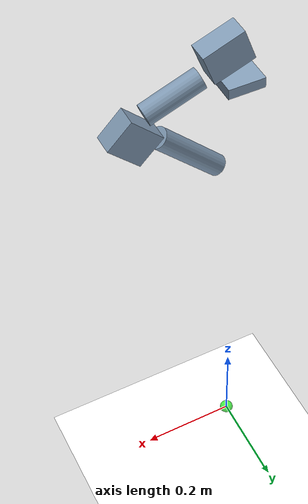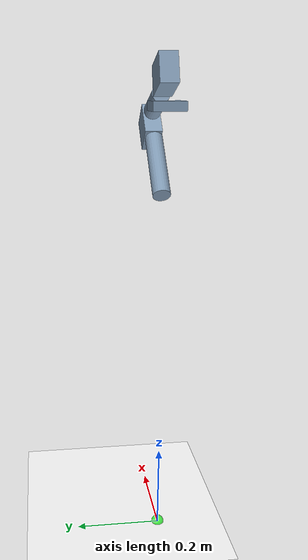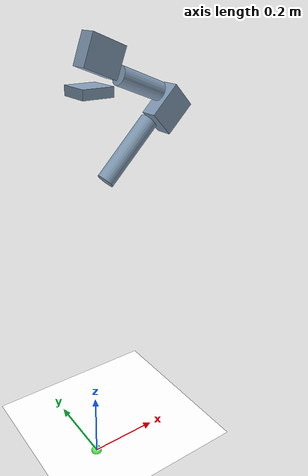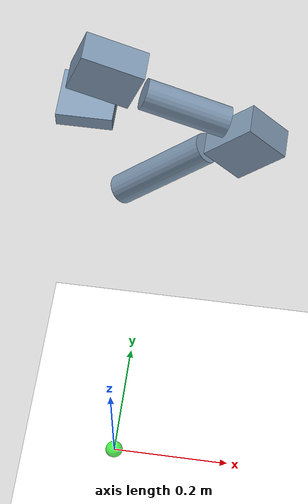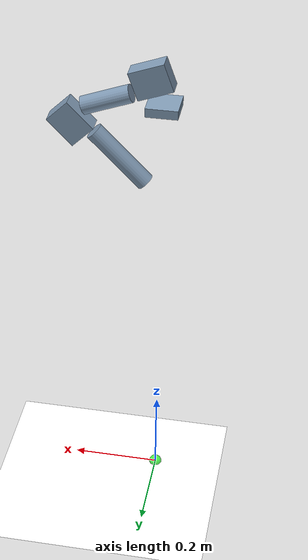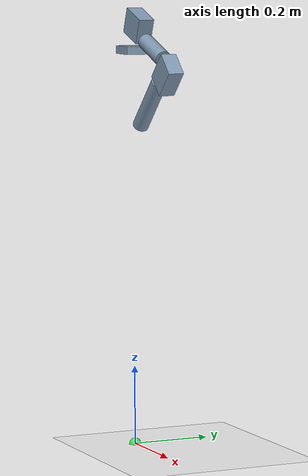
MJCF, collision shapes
<mujoco model="Robot_arm">
    <compiler angle="radian" meshdir='arm_meshes' balanceinertia='false'/>
    <size njmax="500" nconmax="100" />
    <option gravity='0 0 -9.806' iterations='50' solver='Newton' timestep='0.002'/>

    <default>
        <geom contype="1" conaffinity="1" friction="0.6 0.3 0.3" rgba="0.5 0.6 0.7 1" margin="0.001" group="0"/>

        <default class="visual">
            <geom contype="0" conaffinity="0" group="1" type="mesh" rgba="0.9 0.9 0.9 1.0"/>
        </default>

        <light castshadow="false" diffuse="1 1 1"/>
        <motor ctrllimited='true'/>
        <camera fovy="60"/>
        <joint damping="0.01" armature="0.01"/>
    </default>

    <asset>
        <mesh name="base_link" file="base_link.STL" />
        <mesh name="link_1" file="link_1.STL" />
        <mesh name="link_2" file="link_2.STL" />
        <mesh name="link_3" file="link_3.STL" />
        <mesh name="link_4" file="link_4.STL" />
    </asset>

    <asset>
        <texture type="skybox" builtin="gradient" rgb1="1.0 1.0 1.0" rgb2="1.0 1.0 1.0" width="512" height="512"/>
        <texture name="plane" type="2d" builtin="flat" rgb1="1 1 1" rgb2="1 1 1" width="512" height="512" mark="cross" markrgb="0 0 0"/>
        <material name="plane" reflectance="0.0" texture="plane" texrepeat="3 3" texuniform="true"/>
    </asset>

    <visual>
        <rgba com="0.502 1.0 0 0.5" contactforce="0.2 0.98 0.2 0.8" contactpoint="1.0 1.0 0.6 0.4"/>
        <scale com="0.2" forcewidth="0.05" contactwidth="0.10" contactheight="0.04"/>
    </visual>

    <worldbody>
        <light directional="true" diffuse=".8 .8 .8" pos="0 0 10" dir="0 0 -10"/>
        <camera name="track" mode="trackcom" pos="0 -1.3 1.6" xyaxes="1 0 0 0 0.707 0.707"/>
        <geom name='floor' type='plane' conaffinity='1' condim='3' contype='1' rgba='1 1 1 1' material='plane' pos='0 0 0' size='0 0 1'/>

        <body name='base_link' pos='0 0 1' euler='0 0 0'>

            <geom type='mesh' mesh='base_link' class='visual'/>
            <geom name='base_link_collision' type='box' size='0.035 0.035 0.01' pos='0 0 0' euler='0 0 0' />
            <inertial pos='1.688E-07 -8.3907E-05 0.011068' mass='0.10458' fullinertia='7.0188E-05 4.9884E-05 7.6398E-05 1.1028E-09 2.5713E-11 3.4141E-07'/>
            <site name="imu" pos="0 0 0"/>

            <!-- link1-->
            <body name="link_1" pos="0 -0.0001 0.049" quat="0.696006 0.696009 0.124794 -0.124794">
                <inertial pos="0.023572 0.014375 -0.00025895" quat="-0.0544401 0.710149 0.0551732 0.699771" mass="0.32357" diaginertia="0.00030638 0.000232161 0.000180019" />
                <joint name="joint_1" type='hinge' pos="0 0 0" axis="0 0 1" limited="true" range="-0.5 2" frictionloss='0.0'/>
                <geom type='mesh' rgba="1 1 1 1" mesh='link_1' class='visual'/>
                <geom name='link1_collision' type='box' size='0.04 0.032 0.02' pos='0.02 0.02 0' euler='0 0 0' />

                <body name="link_2" pos="0.06855 0 0" quat="0.499998 -0.5 0.500002 -0.5">
                    <inertial pos="-1.2238e-07 0.00020627 0.067735" quat="0.999997 0.0011959 -4.45307e-06 0.001984" mass="0.1626" diaginertia="0.000412886 0.000392583 7.94664e-05" />
                    <joint name="joint_2" type='hinge' pos="0 0 0" axis="0 0 -1" limited="true" range="-3.14 3.14" frictionloss='0.0' />
                    <geom type='mesh' mesh='link_2' class='visual'/>
                    <geom name='link2_collision' type='cylinder' size='0.02 0.055' pos='0 0 0.06' euler='0 0 0' />

                    <body name="link_3" pos="0 0.00025 0.1414" quat="0.691267 0.69127 0.148821 -0.148821">
                        <inertial pos="0.023572 0.014377 -0.00025896" quat="-0.0544841 0.710145 0.0552199 0.699769" mass="0.32357" diaginertia="0.000306351 0.000232164 0.000179987" />
                        <joint name="joint_3" type='hinge' pos="0 0 0" axis="0 0 1" limited="true" range="-2 2" frictionloss='0.0' />
                        <geom type='mesh' mesh='link_3' class='visual'/>
                        <geom name='link3_collision' type='box' size='0.04 0.032 0.02' pos='0.02 0.02 0' euler='0 0 0'/>

                        <body name="link_4" pos="0.06855 0 0" quat="0.707105 0 0.707108 0">
                            <inertial pos="-1.5087e-07 -1.6077e-07 0.067748" quat="0.923879 -9.48044e-07 -2.06085e-06 0.382685" mass="0.11973" diaginertia="0.000523594 0.000522057 4.41449e-05" />
                            <joint name="joint_4" type='hinge' pos="0 0 0" axis="0 0 -1" limited="true" range="-3.14 3.14" frictionloss='0.0' />
                            <geom type='mesh' mesh='link_4' class='visual'/>
                            <geom name='link4_collision' type='cylinder' size='0.02 0.08' pos='0 0 0.08' euler='0 0 0'/>
                        </body>
                    </body>
                </body>
            </body>
        </body>

        <!-- estiamted position -->
        <body name='estiamted_base_p' pos='0 0 0' mocap='true'>
            <geom name='base_position' conaffinity='0' contype='0' size='0.015' type='sphere' rgba='0 1 0 0.7' />
        </body>

    </worldbody>

    <actuator>

        <position name='joint1_pos' joint='joint_1' gear='1' kp='150' ctrllimited='false' />
        <position name='joint2_pos' joint='joint_2' gear='1' kp='10' ctrllimited='false' />
        <position name='joint3_pos' joint='joint_3' gear='1' kp='10' ctrllimited='false' />
        <position name='joint4_pos' joint='joint_4' gear='1' kp='10' ctrllimited='false' />

        <velocity name='joint1_vel' joint='joint_1' gear='1' kv='1' ctrllimited='false' />
        <velocity name='joint2_vel' joint='joint_2' gear='1' kv='1' ctrllimited='false' />
        <velocity name='joint3_vel' joint='joint_3' gear='1' kv='1' ctrllimited='false' />
        <velocity name='joint4_vel' joint='joint_4' gear='1' kv='1' ctrllimited='false' />
    </actuator>

    <sensor>

        <!-- sensordata index from 0-3 -->
        <jointpos name='Link1' joint='joint_1'/>
        <jointpos name='Link2' joint='joint_2'/>
        <jointpos name='Link3' joint='joint_3'/>
        <jointpos name='Link4' joint='joint_4'/>

        <!-- sensordata index from 12-17 -->
        <jointvel name='Link1_vel' joint='joint_1'/>
        <jointvel name='Link2_vel' joint='joint_2'/>
        <jointvel name='Link3_vel' joint='joint_3'/>
        <jointvel name='Link4_vel' joint='joint_4'/>

    </sensor>

</mujoco>
